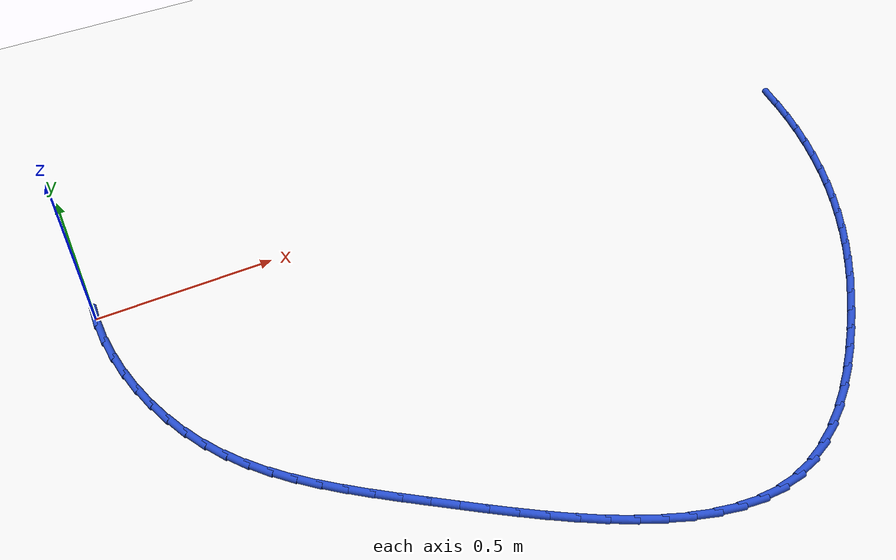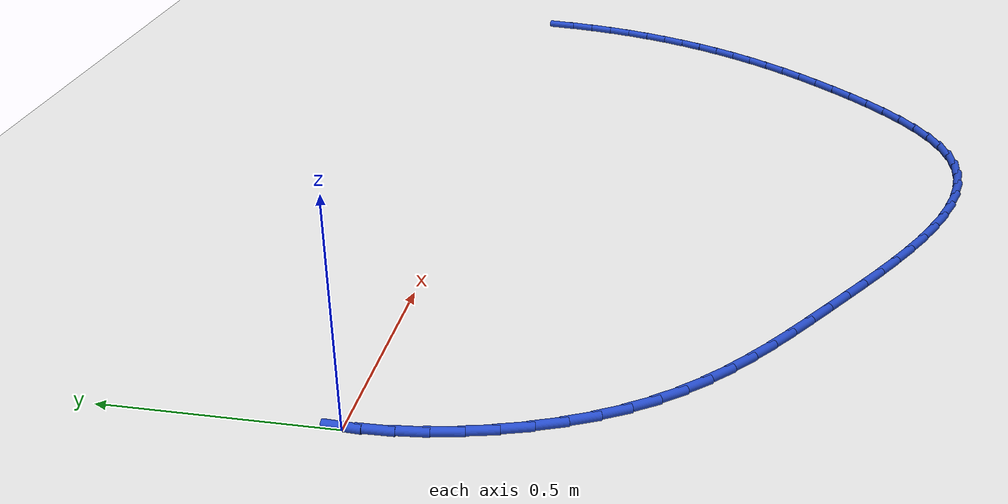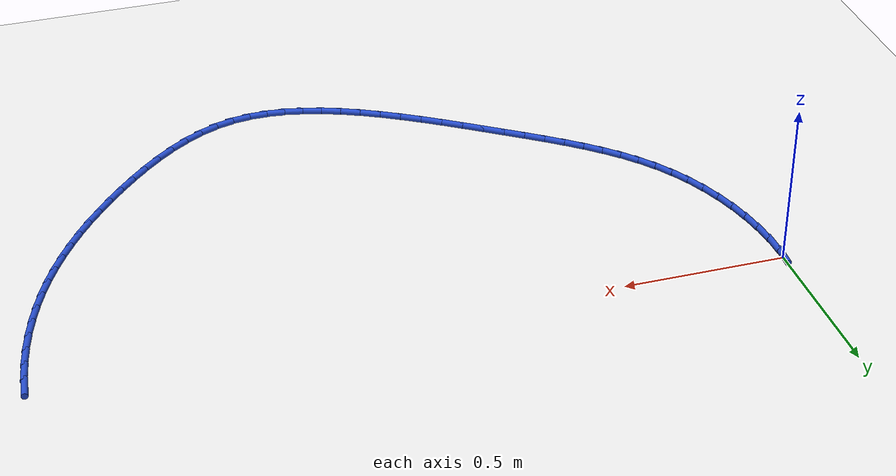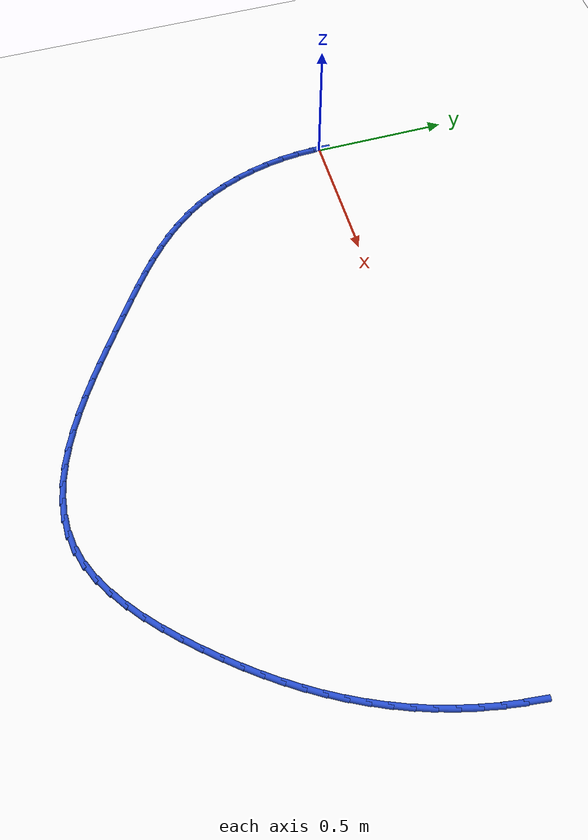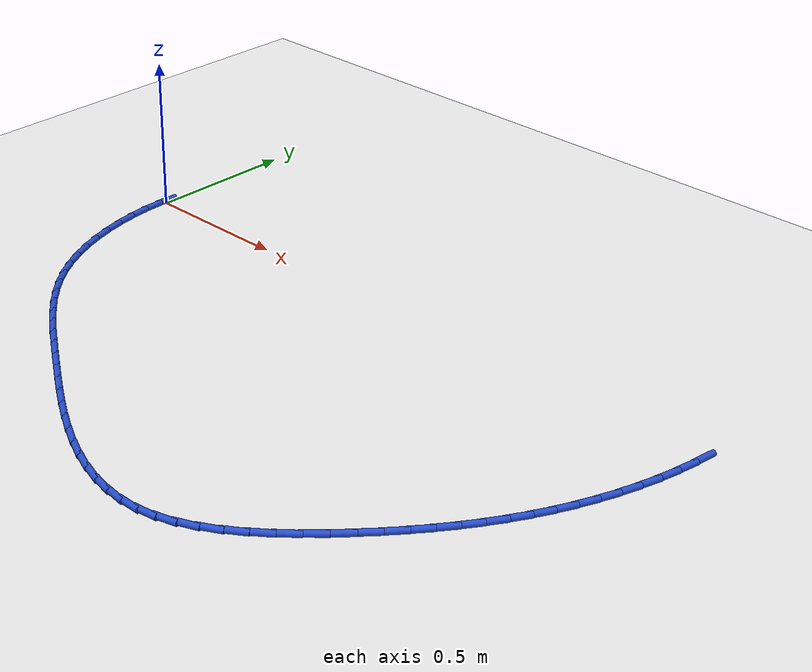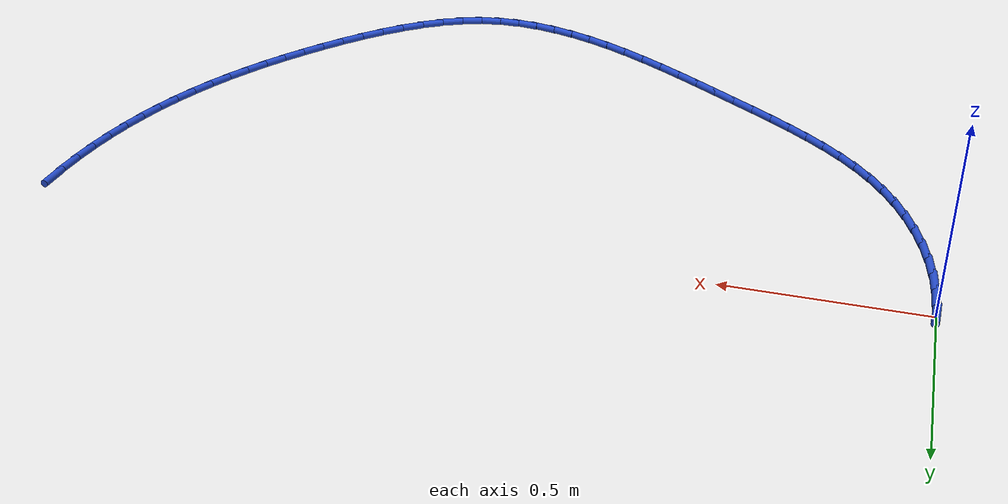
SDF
<sdf version="1.6">
 <world name="default">
  <model name="ground_plane">
   <static>1</static>
   <link name="link">
    <collision name="collision">
     <geometry><plane><normal>0 0 1</normal><size>100 100</size></plane></geometry>
     <surface><friction><ode><mu>100</mu><mu2>50</mu2></ode></friction></surface>
    </collision>
    <visual name="visual">
     <cast_shadows>0</cast_shadows>
     <geometry><plane><normal>0 0 1</normal><size>100 100</size></plane></geometry>
     <material>
      <script><uri>file://media/materials/scripts/gazebo.material</uri><name>Gazebo/WhiteGlow</name></script>
     </material>
    </visual>
   </link>
  </model>
  <model name="line">
   <link name="link_0">
    <pose>-4.163336342344337e-17 9.71445146547012e-17 0.01 0 1.57 1.5235630429895026</pose>
    <collision name="collision">
     <geometry><cylinder><radius>0.01</radius><length>0.08</length></cylinder></geometry>
    </collision>
    <visual name="visual">
     <material>
      <script><name>Gazebo/Blue</name><uri>file://media/materials/scripts/gazebo.material</uri></script>
     </material>
     <geometry><cylinder><radius>0.01</radius><length>0.08</length></cylinder></geometry>
    </visual>
   </link>
   <link name="link_55">
    <pose>2.226202386673865 -0.026686194158927458 0.01 0 1.57 1.4471852685483908</pose>
    <collision name="collision">
     <geometry><cylinder><radius>0.01</radius><length>0.08</length></cylinder></geometry>
    </collision>
    <visual name="visual">
     <material>
      <script><name>Gazebo/Blue</name><uri>file://media/materials/scripts/gazebo.material</uri></script>
     </material>
     <geometry><cylinder><radius>0.01</radius><length>0.08</length></cylinder></geometry>
    </visual>
   </link>
   <link name="link_56">
    <pose>2.218084155190351 -0.09202696049067514 0.01 0 1.57 1.4001935020384775</pose>
    <collision name="collision">
     <geometry><cylinder><radius>0.01</radius><length>0.08</length></cylinder></geometry>
    </collision>
    <visual name="visual">
     <material>
      <script><name>Gazebo/Blue</name><uri>file://media/materials/scripts/gazebo.material</uri></script>
     </material>
     <geometry><cylinder><radius>0.01</radius><length>0.08</length></cylinder></geometry>
    </visual>
   </link>
   <link name="link_57">
    <pose>2.20692059983412 -0.1568268155767255 0.01 0 1.57 1.3544746158299825</pose>
    <collision name="collision">
     <geometry><cylinder><radius>0.01</radius><length>0.08</length></cylinder></geometry>
    </collision>
    <visual name="visual">
     <material>
      <script><name>Gazebo/Blue</name><uri>file://media/materials/scripts/gazebo.material</uri></script>
     </material>
     <geometry><cylinder><radius>0.01</radius><length>0.08</length></cylinder></geometry>
    </visual>
   </link>
   <link name="link_58">
    <pose>2.1928501993333858 -0.22085292510509866 0.01 0 1.57 1.3096968372674815</pose>
    <collision name="collision">
     <geometry><cylinder><radius>0.01</radius><length>0.08</length></cylinder></geometry>
    </collision>
    <visual name="visual">
     <material>
      <script><name>Gazebo/Blue</name><uri>file://media/materials/scripts/gazebo.material</uri></script>
     </material>
     <geometry><cylinder><radius>0.01</radius><length>0.08</length></cylinder></geometry>
    </visual>
   </link>
   <link name="link_59">
    <pose>2.176011432416361 -0.2838724547638176 0.01 0 1.57 1.265518908008513</pose>
    <collision name="collision">
     <geometry><cylinder><radius>0.01</radius><length>0.08</length></cylinder></geometry>
    </collision>
    <visual name="visual">
     <material>
      <script><name>Gazebo/Blue</name><uri>file://media/materials/scripts/gazebo.material</uri></script>
     </material>
     <geometry><cylinder><radius>0.01</radius><length>0.08</length></cylinder></geometry>
    </visual>
   </link>
   <link name="link_60">
    <pose>2.1565427778112594 -0.34565257024090246 0.01 0 1.57 1.2215881445363395</pose>
    <collision name="collision">
     <geometry><cylinder><radius>0.01</radius><length>0.08</length></cylinder></geometry>
    </collision>
    <visual name="visual">
     <material>
      <script><name>Gazebo/Blue</name><uri>file://media/materials/scripts/gazebo.material</uri></script>
     </material>
     <geometry><cylinder><radius>0.01</radius><length>0.08</length></cylinder></geometry>
    </visual>
   </link>
   <link name="link_61">
    <pose>2.1345823744210843 -0.4059615729614372 0.01 0 1.57 1.1777314059712747</pose>
    <collision name="collision">
     <geometry><cylinder><radius>0.01</radius><length>0.08</length></cylinder></geometry>
    </collision>
    <visual name="visual">
     <material>
      <script><name>Gazebo/Blue</name><uri>file://media/materials/scripts/gazebo.material</uri></script>
     </material>
     <geometry><cylinder><radius>0.01</radius><length>0.08</length></cylinder></geometry>
    </visual>
   </link>
   <link name="link_62">
    <pose>2.1102335979277735 -0.46468394725099427 0.01 0 1.57 1.134336696899501</pose>
    <collision name="collision">
     <geometry><cylinder><radius>0.01</radius><length>0.08</length></cylinder></geometry>
    </collision>
    <visual name="visual">
     <material>
      <script><name>Gazebo/Blue</name><uri>file://media/materials/scripts/gazebo.material</uri></script>
     </material>
     <geometry><cylinder><radius>0.01</radius><length>0.08</length></cylinder></geometry>
    </visual>
   </link>
   <link name="link_63">
    <pose>2.0835354826698116 -0.5219192140075423 0.01 0 1.57 1.0918057291098162</pose>
    <collision name="collision">
     <geometry><cylinder><radius>0.01</radius><length>0.08</length></cylinder></geometry>
    </collision>
    <visual name="visual">
     <material>
      <script><name>Gazebo/Blue</name><uri>file://media/materials/scripts/gazebo.material</uri></script>
     </material>
     <geometry><cylinder><radius>0.01</radius><length>0.08</length></cylinder></geometry>
    </visual>
   </link>
   <link name="link_64">
    <pose>2.0545200950954574 -0.5777901816631765 0.01 0 1.57 1.0504952956313343</pose>
    <collision name="collision">
     <geometry><cylinder><radius>0.01</radius><length>0.08</length></cylinder></geometry>
    </collision>
    <visual name="visual">
     <material>
      <script><name>Gazebo/Blue</name><uri>file://media/materials/scripts/gazebo.material</uri></script>
     </material>
     <geometry><cylinder><radius>0.01</radius><length>0.08</length></cylinder></geometry>
    </visual>
   </link>
   <link name="link_65">
    <pose>2.0232195016529673 -0.6324196586499944 0.01 0 1.57 1.0107270422729528</pose>
    <collision name="collision">
     <geometry><cylinder><radius>0.01</radius><length>0.08</length></cylinder></geometry>
    </collision>
    <visual name="visual">
     <material>
      <script><name>Gazebo/Blue</name><uri>file://media/materials/scripts/gazebo.material</uri></script>
     </material>
     <geometry><cylinder><radius>0.01</radius><length>0.08</length></cylinder></geometry>
    </visual>
   </link>
   <link name="link_66">
    <pose>1.9896657687905983 -0.6859304534000927 0.01 0 1.57 0.9727782050049214</pose>
    <collision name="collision">
     <geometry><cylinder><radius>0.01</radius><length>0.08</length></cylinder></geometry>
    </collision>
    <visual name="visual">
     <material>
      <script><name>Gazebo/Blue</name><uri>file://media/materials/scripts/gazebo.material</uri></script>
     </material>
     <geometry><cylinder><radius>0.01</radius><length>0.08</length></cylinder></geometry>
    </visual>
   </link>
   <link name="link_67">
    <pose>1.9538909629566092 -0.7384453743455673 0.01 0 1.57 0.9368759278421039</pose>
    <collision name="collision">
     <geometry><cylinder><radius>0.01</radius><length>0.08</length></cylinder></geometry>
    </collision>
    <visual name="visual">
     <material>
      <script><name>Gazebo/Blue</name><uri>file://media/materials/scripts/gazebo.material</uri></script>
     </material>
     <geometry><cylinder><radius>0.01</radius><length>0.08</length></cylinder></geometry>
    </visual>
   </link>
   <link name="link_68">
    <pose>1.9159271505992557 -0.7900872299185157 0.01 0 1.57 0.9031951514433513</pose>
    <collision name="collision">
     <geometry><cylinder><radius>0.01</radius><length>0.08</length></cylinder></geometry>
    </collision>
    <visual name="visual">
     <material>
      <script><name>Gazebo/Blue</name><uri>file://media/materials/scripts/gazebo.material</uri></script>
     </material>
     <geometry><cylinder><radius>0.01</radius><length>0.08</length></cylinder></geometry>
    </visual>
   </link>
   <link name="link_69">
    <pose>1.875806398166797 -0.8409788285510332 0.01 0 1.57 0.8718596528302539</pose>
    <collision name="collision">
     <geometry><cylinder><radius>0.01</radius><length>0.08</length></cylinder></geometry>
    </collision>
    <visual name="visual">
     <material>
      <script><name>Gazebo/Blue</name><uri>file://media/materials/scripts/gazebo.material</uri></script>
     </material>
     <geometry><cylinder><radius>0.01</radius><length>0.08</length></cylinder></geometry>
    </visual>
   </link>
   <link name="link_70">
    <pose>1.8335607721074887 -0.8912429786752177 0.01 0 1.57 0.8428658534096599</pose>
    <collision name="collision">
     <geometry><cylinder><radius>0.01</radius><length>0.08</length></cylinder></geometry>
    </collision>
    <visual name="visual">
     <material>
      <script><name>Gazebo/Blue</name><uri>file://media/materials/scripts/gazebo.material</uri></script>
     </material>
     <geometry><cylinder><radius>0.01</radius><length>0.08</length></cylinder></geometry>
    </visual>
   </link>
   <link name="link_71">
    <pose>1.789223099763013 -0.9409936510339457 0.01 0 1.57 0.8121860128005721</pose>
    <collision name="collision">
     <geometry><cylinder><radius>0.01</radius><length>0.08</length></cylinder></geometry>
    </collision>
    <visual name="visual">
     <material>
      <script><name>Gazebo/Blue</name><uri>file://media/materials/scripts/gazebo.material</uri></script>
     </material>
     <geometry><cylinder><radius>0.01</radius><length>0.08</length></cylinder></geometry>
    </visual>
   </link>
   <link name="link_72">
    <pose>1.7428640386253273 -0.9899054235442099 0.01 0 1.57 0.7734326256636637</pose>
    <collision name="collision">
     <geometry><cylinder><radius>0.01</radius><length>0.08</length></cylinder></geometry>
    </collision>
    <visual name="visual">
     <material>
      <script><name>Gazebo/Blue</name><uri>file://media/materials/scripts/gazebo.material</uri></script>
     </material>
     <geometry><cylinder><radius>0.01</radius><length>0.08</length></cylinder></geometry>
    </visual>
   </link>
   <link name="link_73">
    <pose>1.69460877883818 -1.0370194836713487 0.01 0 1.57 0.7249002084801344</pose>
    <collision name="collision">
     <geometry><cylinder><radius>0.01</radius><length>0.08</length></cylinder></geometry>
    </collision>
    <visual name="visual">
     <material>
      <script><name>Gazebo/Blue</name><uri>file://media/materials/scripts/gazebo.material</uri></script>
     </material>
     <geometry><cylinder><radius>0.01</radius><length>0.08</length></cylinder></geometry>
    </visual>
   </link>
   <link name="link_74">
    <pose>1.6445867526134017 -1.0813277477498786 0.01 0 1.57 0.6648298360897107</pose>
    <collision name="collision">
     <geometry><cylinder><radius>0.01</radius><length>0.08</length></cylinder></geometry>
    </collision>
    <visual name="visual">
     <material>
      <script><name>Gazebo/Blue</name><uri>file://media/materials/scripts/gazebo.material</uri></script>
     </material>
     <geometry><cylinder><radius>0.01</radius><length>0.08</length></cylinder></geometry>
    </visual>
   </link>
   <link name="link_75">
    <pose>1.5929273921628249 -1.1218221321143123 0.01 0 1.57 0.5909601344273495</pose>
    <collision name="collision">
     <geometry><cylinder><radius>0.01</radius><length>0.08</length></cylinder></geometry>
    </collision>
    <visual name="visual">
     <material>
      <script><name>Gazebo/Blue</name><uri>file://media/materials/scripts/gazebo.material</uri></script>
     </material>
     <geometry><cylinder><radius>0.01</radius><length>0.08</length></cylinder></geometry>
    </visual>
   </link>
   <link name="link_76">
    <pose>1.5397601296982792 -1.1574945530991663 0.01 0 1.57 0.5006196950592622</pose>
    <collision name="collision">
     <geometry><cylinder><radius>0.01</radius><length>0.08</length></cylinder></geometry>
    </collision>
    <visual name="visual">
     <material>
      <script><name>Gazebo/Blue</name><uri>file://media/materials/scripts/gazebo.material</uri></script>
     </material>
     <geometry><cylinder><radius>0.01</radius><length>0.08</length></cylinder></geometry>
    </visual>
   </link>
   <link name="link_77">
    <pose>1.4852143974315988 -1.187336927038954 0.01 0 1.57 0.39106556299412903</pose>
    <collision name="collision">
     <geometry><cylinder><radius>0.01</radius><length>0.08</length></cylinder></geometry>
    </collision>
    <visual name="visual">
     <material>
      <script><name>Gazebo/Blue</name><uri>file://media/materials/scripts/gazebo.material</uri></script>
     </material>
     <geometry><cylinder><radius>0.01</radius><length>0.08</length></cylinder></geometry>
    </visual>
   </link>
   <link name="link_78">
    <pose>1.4294196275746132 -1.2103411702681914 0.01 0 1.57 0.26048567885906093</pose>
    <collision name="collision">
     <geometry><cylinder><radius>0.01</radius><length>0.08</length></cylinder></geometry>
    </collision>
    <visual name="visual">
     <material>
      <script><name>Gazebo/Blue</name><uri>file://media/materials/scripts/gazebo.material</uri></script>
     </material>
     <geometry><cylinder><radius>0.01</radius><length>0.08</length></cylinder></geometry>
    </visual>
   </link>
   <link name="link_79">
    <pose>1.3725054388989113 -1.2255111724863954 0.01 0 1.57 0.12004475202115084</pose>
    <collision name="collision">
     <geometry><cylinder><radius>0.01</radius><length>0.08</length></cylinder></geometry>
    </collision>
    <visual name="visual">
     <material>
      <script><name>Gazebo/Blue</name><uri>file://media/materials/scripts/gazebo.material</uri></script>
     </material>
     <geometry><cylinder><radius>0.01</radius><length>0.08</length></cylinder></geometry>
    </visual>
   </link>
   <link name="link_80">
    <pose>1.3146114812581848 -1.2324946160827144 0.01 0 1.57 -0.01018783613372331</pose>
    <collision name="collision">
     <geometry><cylinder><radius>0.01</radius><length>0.08</length></cylinder></geometry>
    </collision>
    <visual name="visual">
     <material>
      <script><name>Gazebo/Blue</name><uri>file://media/materials/scripts/gazebo.material</uri></script>
     </material>
     <geometry><cylinder><radius>0.01</radius><length>0.08</length></cylinder></geometry>
    </visual>
   </link>
   <link name="link_81">
    <pose>1.2558923187152924 -1.2318963741790991 0.01 0 1.57 -0.1255770226135821</pose>
    <collision name="collision">
     <geometry><cylinder><radius>0.01</radius><length>0.08</length></cylinder></geometry>
    </collision>
    <visual name="visual">
     <material>
      <script><name>Gazebo/Blue</name><uri>file://media/materials/scripts/gazebo.material</uri></script>
     </material>
     <geometry><cylinder><radius>0.01</radius><length>0.08</length></cylinder></geometry>
    </visual>
   </link>
   <link name="link_82">
    <pose>1.1965037269374768 -1.2243990804062472 0.01 0 1.57 -0.22505652564209183</pose>
    <collision name="collision">
     <geometry><cylinder><radius>0.01</radius><length>0.08</length></cylinder></geometry>
    </collision>
    <visual name="visual">
     <material>
      <script><name>Gazebo/Blue</name><uri>file://media/materials/scripts/gazebo.material</uri></script>
     </material>
     <geometry><cylinder><radius>0.01</radius><length>0.08</length></cylinder></geometry>
    </visual>
   </link>
   <link name="link_83">
    <pose>1.1366014815919818 -1.2106853683948562 0.01 0 1.57 -0.30916480571702504</pose>
    <collision name="collision">
     <geometry><cylinder><radius>0.01</radius><length>0.08</length></cylinder></geometry>
    </collision>
    <visual name="visual">
     <material>
      <script><name>Gazebo/Blue</name><uri>file://media/materials/scripts/gazebo.material</uri></script>
     </material>
     <geometry><cylinder><radius>0.01</radius><length>0.08</length></cylinder></geometry>
    </visual>
   </link>
   <link name="link_84">
    <pose>1.0763413583460533 -1.1914378717756247 0.01 0 1.57 -0.37927612776306424</pose>
    <collision name="collision">
     <geometry><cylinder><radius>0.01</radius><length>0.08</length></cylinder></geometry>
    </collision>
    <visual name="visual">
     <material>
      <script><name>Gazebo/Blue</name><uri>file://media/materials/scripts/gazebo.material</uri></script>
     </material>
     <geometry><cylinder><radius>0.01</radius><length>0.08</length></cylinder></geometry>
    </visual>
   </link>
   <link name="link_85">
    <pose>1.015879132866934 -1.1673392241792495 0.01 0 1.57 -0.43703205392114153</pose>
    <collision name="collision">
     <geometry><cylinder><radius>0.01</radius><length>0.08</length></cylinder></geometry>
    </collision>
    <visual name="visual">
     <material>
      <script><name>Gazebo/Blue</name><uri>file://media/materials/scripts/gazebo.material</uri></script>
     </material>
     <geometry><cylinder><radius>0.01</radius><length>0.08</length></cylinder></geometry>
    </visual>
   </link>
   <link name="link_86">
    <pose>0.9553705808218698 -1.1390720592364285 0.01 0 1.57 -0.4840116819495634</pose>
    <collision name="collision">
     <geometry><cylinder><radius>0.01</radius><length>0.08</length></cylinder></geometry>
    </collision>
    <visual name="visual">
     <material>
      <script><name>Gazebo/Blue</name><uri>file://media/materials/scripts/gazebo.material</uri></script>
     </material>
     <geometry><cylinder><radius>0.01</radius><length>0.08</length></cylinder></geometry>
    </visual>
   </link>
   <link name="link_87">
    <pose>0.8949714778781035 -1.1073190105778605 0.01 0 1.57 -0.5215757768481518</pose>
    <collision name="collision">
     <geometry><cylinder><radius>0.01</radius><length>0.08</length></cylinder></geometry>
    </collision>
    <visual name="visual">
     <material>
      <script><name>Gazebo/Blue</name><uri>file://media/materials/scripts/gazebo.material</uri></script>
     </material>
     <geometry><cylinder><radius>0.01</radius><length>0.08</length></cylinder></geometry>
    </visual>
   </link>
   <link name="link_88">
    <pose>0.8348375997028806 -1.0727627118342427 0.01 0 1.57 -0.5508106909455347</pose>
    <collision name="collision">
     <geometry><cylinder><radius>0.01</radius><length>0.08</length></cylinder></geometry>
    </collision>
    <visual name="visual">
     <material>
      <script><name>Gazebo/Blue</name><uri>file://media/materials/scripts/gazebo.material</uri></script>
     </material>
     <geometry><cylinder><radius>0.01</radius><length>0.08</length></cylinder></geometry>
    </visual>
   </link>
   <link name="link_89">
    <pose>0.7751247219634443 -1.0360857966362724 0.01 0 1.57 -0.5725191437240794</pose>
    <collision name="collision">
     <geometry><cylinder><radius>0.01</radius><length>0.08</length></cylinder></geometry>
    </collision>
    <visual name="visual">
     <material>
      <script><name>Gazebo/Blue</name><uri>file://media/materials/scripts/gazebo.material</uri></script>
     </material>
     <geometry><cylinder><radius>0.01</radius><length>0.08</length></cylinder></geometry>
    </visual>
   </link>
   <link name="link_90">
    <pose>0.7159886203270402 -0.9979708986146484 0.01 0 1.57 -0.5872263348739134</pose>
    <collision name="collision">
     <geometry><cylinder><radius>0.01</radius><length>0.08</length></cylinder></geometry>
    </collision>
    <visual name="visual">
     <material>
      <script><name>Gazebo/Blue</name><uri>file://media/materials/scripts/gazebo.material</uri></script>
     </material>
     <geometry><cylinder><radius>0.01</radius><length>0.08</length></cylinder></geometry>
    </visual>
   </link>
   <link name="link_91">
    <pose>0.6575850704609113 -0.9591006514000674 0.01 0 1.57 -0.5951838562694229</pose>
    <collision name="collision">
     <geometry><cylinder><radius>0.01</radius><length>0.08</length></cylinder></geometry>
    </collision>
    <visual name="visual">
     <material>
      <script><name>Gazebo/Blue</name><uri>file://media/materials/scripts/gazebo.material</uri></script>
     </material>
     <geometry><cylinder><radius>0.01</radius><length>0.08</length></cylinder></geometry>
    </visual>
   </link>
   <link name="link_92">
    <pose>0.6000698480323032 -0.9201576886232283 0.01 0 1.57 -0.5973582429350094</pose>
    <collision name="collision">
     <geometry><cylinder><radius>0.01</radius><length>0.08</length></cylinder></geometry>
    </collision>
    <visual name="visual">
     <material>
      <script><name>Gazebo/Blue</name><uri>file://media/materials/scripts/gazebo.material</uri></script>
     </material>
     <geometry><cylinder><radius>0.01</radius><length>0.08</length></cylinder></geometry>
    </visual>
   </link>
   <link name="link_93">
    <pose>0.5436077147267516 -0.8817484426226366 0.01 0 1.57 -0.6030440400719226</pose>
    <collision name="collision">
     <geometry><cylinder><radius>0.01</radius><length>0.08</length></cylinder></geometry>
    </collision>
    <visual name="visual">
     <material>
      <script><name>Gazebo/Blue</name><uri>file://media/materials/scripts/gazebo.material</uri></script>
     </material>
     <geometry><cylinder><radius>0.01</radius><length>0.08</length></cylinder></geometry>
    </visual>
   </link>
   <link name="link_94">
    <pose>0.4884477352789745 -0.8437644572206656 0.01 0 1.57 -0.6177646797230222</pose>
    <collision name="collision">
     <geometry><cylinder><radius>0.01</radius><length>0.08</length></cylinder></geometry>
    </collision>
    <visual name="visual">
     <material>
      <script><name>Gazebo/Blue</name><uri>file://media/materials/scripts/gazebo.material</uri></script>
     </material>
     <geometry><cylinder><radius>0.01</radius><length>0.08</length></cylinder></geometry>
    </visual>
   </link>
   <link name="link_95">
    <pose>0.4348851063670174 -0.8057060780940257 0.01 0 1.57 -0.6420653324499387</pose>
    <collision name="collision">
     <geometry><cylinder><radius>0.01</radius><length>0.08</length></cylinder></geometry>
    </collision>
    <visual name="visual">
     <material>
      <script><name>Gazebo/Blue</name><uri>file://media/materials/scripts/gazebo.material</uri></script>
     </material>
     <geometry><cylinder><radius>0.01</radius><length>0.08</length></cylinder></geometry>
    </visual>
   </link>
   <link name="link_96">
    <pose>0.3832154952085815 -0.7670696607506459 0.01 0 1.57 -0.6763821743441992</pose>
    <collision name="collision">
     <geometry><cylinder><radius>0.01</radius><length>0.08</length></cylinder></geometry>
    </collision>
    <visual name="visual">
     <material>
      <script><name>Gazebo/Blue</name><uri>file://media/materials/scripts/gazebo.material</uri></script>
     </material>
     <geometry><cylinder><radius>0.01</radius><length>0.08</length></cylinder></geometry>
    </visual>
   </link>
   <link name="link_97">
    <pose>0.3337345690213665 -0.7273515606984541 0.01 0 1.57 -0.7210122356610826</pose>
    <collision name="collision">
     <geometry><cylinder><radius>0.01</radius><length>0.08</length></cylinder></geometry>
    </collision>
    <visual name="visual">
     <material>
      <script><name>Gazebo/Blue</name><uri>file://media/materials/scripts/gazebo.material</uri></script>
     </material>
     <geometry><cylinder><radius>0.01</radius><length>0.08</length></cylinder></geometry>
    </visual>
   </link>
   <link name="link_98">
    <pose>0.2867379950230721 -0.6860481334453783 0.01 0 1.57 -0.7759912329150951</pose>
    <collision name="collision">
     <geometry><cylinder><radius>0.01</radius><length>0.08</length></cylinder></geometry>
    </collision>
    <visual name="visual">
     <material>
      <script><name>Gazebo/Blue</name><uri>file://media/materials/scripts/gazebo.material</uri></script>
     </material>
     <geometry><cylinder><radius>0.01</radius><length>0.08</length></cylinder></geometry>
    </visual>
   </link>
   <link name="link_99">
    <pose>0.24252144043139967 -0.6426557344993482 0.01 0 1.57 -0.8409403819539779</pose>
    <collision name="collision">
     <geometry><cylinder><radius>0.01</radius><length>0.08</length></cylinder></geometry>
    </collision>
    <visual name="visual">
     <material>
      <script><name>Gazebo/Blue</name><uri>file://media/materials/scripts/gazebo.material</uri></script>
     </material>
     <geometry><cylinder><radius>0.01</radius><length>0.08</length></cylinder></geometry>
    </visual>
   </link>
   <link name="link_100">
    <pose>0.2013805724640483 -0.5966707193682912 0.01 0 1.57 -0.9149127357776652</pose>
    <collision name="collision">
     <geometry><cylinder><radius>0.01</radius><length>0.08</length></cylinder></geometry>
    </collision>
    <visual name="visual">
     <material>
      <script><name>Gazebo/Blue</name><uri>file://media/materials/scripts/gazebo.material</uri></script>
     </material>
     <geometry><cylinder><radius>0.01</radius><length>0.08</length></cylinder></geometry>
    </visual>
   </link>
   <link name="link_101">
    <pose>0.16361105833871942 -0.5475894435601367 0.01 0 1.57 -0.9950597985929416</pose>
    <collision name="collision">
     <geometry><cylinder><radius>0.01</radius><length>0.08</length></cylinder></geometry>
    </collision>
    <visual name="visual">
     <material>
      <script><name>Gazebo/Blue</name><uri>file://media/materials/scripts/gazebo.material</uri></script>
     </material>
     <geometry><cylinder><radius>0.01</radius><length>0.08</length></cylinder></geometry>
    </visual>
   </link>
   <link name="link_102">
    <pose>0.1294861802959143 -0.49501617719193425 0.01 0 1.57 -1.0728162754738018</pose>
    <collision name="collision">
     <geometry><cylinder><radius>0.01</radius><length>0.08</length></cylinder></geometry>
    </collision>
    <visual name="visual">
     <material>
      <script><name>Gazebo/Blue</name><uri>file://media/materials/scripts/gazebo.material</uri></script>
     </material>
     <geometry><cylinder><radius>0.01</radius><length>0.08</length></cylinder></geometry>
    </visual>
   </link>
   <link name="link_103">
    <pose>0.09914392818028103 -0.43920741467771546 0.01 0 1.57 -1.1461339096488725</pose>
    <collision name="collision">
     <geometry><cylinder><radius>0.01</radius><length>0.08</length></cylinder></geometry>
    </collision>
    <visual name="visual">
     <material>
      <script><name>Gazebo/Blue</name><uri>file://media/materials/scripts/gazebo.material</uri></script>
     </material>
     <geometry><cylinder><radius>0.01</radius><length>0.08</length></cylinder></geometry>
    </visual>
   </link>
   <link name="link_104">
    <pose>0.07267172122962431 -0.3806634437229715 0.01 0 1.57 -1.2160286654528474</pose>
    <collision name="collision">
     <geometry><cylinder><radius>0.01</radius><length>0.08</length></cylinder></geometry>
    </collision>
    <visual name="visual">
     <material>
      <script><name>Gazebo/Blue</name><uri>file://media/materials/scripts/gazebo.material</uri></script>
     </material>
     <geometry><cylinder><radius>0.01</radius><length>0.08</length></cylinder></geometry>
    </visual>
   </link>
   <link name="link_105">
    <pose>0.05015689108697695 -0.31988497431442703 0.01 0 1.57 -1.283506178953575</pose>
    <collision name="collision">
     <geometry><cylinder><radius>0.01</radius><length>0.08</length></cylinder></geometry>
    </collision>
    <visual name="visual">
     <material>
      <script><name>Gazebo/Blue</name><uri>file://media/materials/scripts/gazebo.material</uri></script>
     </material>
     <geometry><cylinder><radius>0.01</radius><length>0.08</length></cylinder></geometry>
    </visual>
   </link>
   <link name="link_106">
    <pose>0.03168676939537055 -0.25737271643880405 0.01 0 1.57 -1.349550855414255</pose>
    <collision name="collision">
     <geometry><cylinder><radius>0.01</radius><length>0.08</length></cylinder></geometry>
    </collision>
    <visual name="visual">
     <material>
      <script><name>Gazebo/Blue</name><uri>file://media/materials/scripts/gazebo.material</uri></script>
     </material>
     <geometry><cylinder><radius>0.01</radius><length>0.08</length></cylinder></geometry>
    </visual>
   </link>
   <link name="link_107">
    <pose>0.017348687797837645 -0.19362738008282707 0.01 0 1.57 -1.415132474624993</pose>
    <collision name="collision">
     <geometry><cylinder><radius>0.01</radius><length>0.08</length></cylinder></geometry>
    </collision>
    <visual name="visual">
     <material>
      <script><name>Gazebo/Blue</name><uri>file://media/materials/scripts/gazebo.material</uri></script>
     </material>
     <geometry><cylinder><radius>0.01</radius><length>0.08</length></cylinder></geometry>
    </visual>
   </link>
   <link name="link_108">
    <pose>0.007229977937410072 -0.12914967523321802 0.01 0 1.57 -1.481219599457951</pose>
    <collision name="collision">
     <geometry><cylinder><radius>0.01</radius><length>0.08</length></cylinder></geometry>
    </collision>
    <visual name="visual">
     <material>
      <script><name>Gazebo/Blue</name><uri>file://media/materials/scripts/gazebo.material</uri></script>
     </material>
     <geometry><cylinder><radius>0.01</radius><length>0.08</length></cylinder></geometry>
    </visual>
   </link>
   <link name="link_109">
    <pose>0.0014179714571201686 -0.06444031187670168 0.01 0 1.57 -1.548795460809364</pose>
    <collision name="collision">
     <geometry><cylinder><radius>0.01</radius><length>0.08</length></cylinder></geometry>
    </collision>
    <visual name="visual">
     <material>
      <script><name>Gazebo/Blue</name><uri>file://media/materials/scripts/gazebo.material</uri></script>
     </material>
     <geometry><cylinder><radius>0.01</radius><length>0.08</length></cylinder></geometry>
    </visual>
   </link>
  </model>
 </world>
</sdf>
